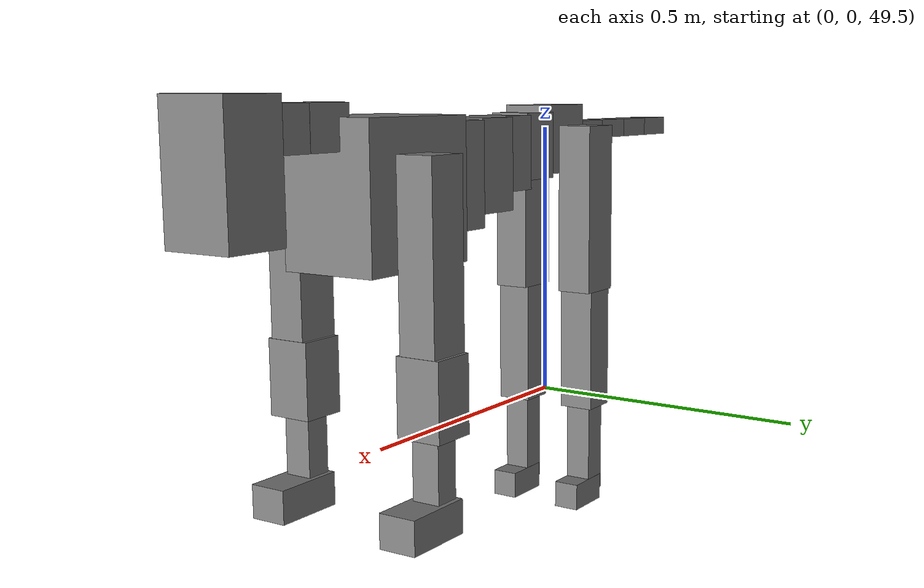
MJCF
<mujoco model="dog">

    <default>
        <joint armature="0.02" stiffness="1" damping="0.2" limited="true"/>
        <geom condim="3" friction="1 0.05 0.05" margin="0.01"/>
        <motor ctrllimited="true" ctrlrange="-1.0 1.0" forcelimited="true" gear="50"/>
    </default>

    <compiler inertiafromgeom="true" angle="radian"/>

    <option timestep="0.016" iterations="50" tolerance="1e-10" solver="Newton" jacobian="dense" cone="pyramidal"/>

    <size nconmax="20000" njmax="60000" nstack="5000000"/>
    <visual>
        <map force="0.1" zfar="30"/>
        <rgba haze="0.15 0.25 0.35 1"/>
        <quality shadowsize="2048"/>
        <global offwidth="800" offheight="800"/>
    </visual>

    <asset>
        <texture type="skybox" builtin="gradient" rgb1="0.3 0.5 0.7" rgb2="0 0 0" width="512" height="512"/>
        <texture name="texplane" type="2d" builtin="checker" rgb1=".2 .3 .4" rgb2=".1 0.15 0.2" width="512" height="512"
                 mark="cross" markrgb=".8 .8 .8"/>
        <texture name="texgeom" type="cube" builtin="flat" mark="cross" width="127" height="1278" rgb1="0.8 0.6 0.4"
                 rgb2="0.8 0.6 0.4" markrgb="1 1 1" random="0.01"/>

        <material name="matplane" reflectance="0.3" texture="texplane" texrepeat="1 1" texuniform="true"/>
        <material name="matgeom" texture="texgeom" texuniform="true" rgba="0.8 0.6 .4 1"/>
    </asset>

    <worldbody>
        <geom name="floor" pos="0 0 0" size="0 0 .25" type="plane" material="matplane" condim="3"/>

        <light directional="false" diffuse=".2 .2 .2" specular="0 0 0" pos="0 0 5" dir="0 0 -1" castshadow="false"/>
        <light mode="targetbodycom" target="torso" directional="false" diffuse=".8 .8 .8" specular="0.3 0.3 0.3"
               pos="0 0 4.0" dir="0 0 -1"/>

        <body name="root" pos="0 0 50">
            <freejoint name="root_1"/>
            <geom type="box" pos="0 0 -0.02" size="0.0774  0.0358  0.063" density="2030"/>

            <body name="spine1" pos="0.054 0 0">
                <joint name="spine1_y" axis="0 1 0" range="0 0.7" limited="true"/>
                <geom type="box" pos="0.02375 0 -0.03" size="0.04375  0.0375  0.05985" density="2030"/>

                <body name="spine2" pos="0.0612 0 0">
                    <joint name="spine2_y" axis="0 1 0" range="-0.15 0.15" limited="true"/>
                    <geom type="box" pos="0.03555  0  -0.04" size="0.04055  0.039  0.06615" density="2030"/>

                    <body name="spine3" pos="0.0730 0 0">
                        <joint name="spine3_y" axis="0 1 0" range="-0.15 0.15" limited="true"/>
                        <geom type="box" pos="0.03555  0  -0.057" size="0.04555  0.0445  0.081" density="2030"/>

                        <body name="spine4" pos="0.0780 0 0">
                            <joint name="spine4_y" axis="0 1 0" range="-0.15 0.15" limited="true"/>
                            <geom type="box" pos="0.05265  0  -0.07" size="0.05265  0.045  0.09135" density="2030"/>

                            <body name="torso" pos="0.1082 0 0">
                                <joint name="torso_y" axis="0 1 0" range="-0.15 0.15" limited="true"/>
                                <geom type="box" pos="0.11925  0  -0.085" size="0.11925  0.085  0.11745"
                                      density="2030"/>

                                <body name="neck1" pos="0.2160  0   0.0180">
                                    <joint name="neck1_y" axis="0 1 0" range="-1.2  -1" limited="true"/>
                                    <geom type="box" pos="0.0423  0  0" size="0.0423  0.03  0.036" density="2325"/>

                                    <body name="neck2" pos="0.0853  0  0">
                                        <joint name="neck2_y" axis="0 1 0" range="0.1  0" limited="true"/>
                                        <geom type="box" pos="0.0423  0  0" size="0.0423  0.03  0.036" density="2325"/>

                                        <body name="head" pos="0.0853  0  0">
                                            <joint name="head_y" axis="0 1 0" range="-0.3  -0.2" limited="true"/>
                                            <geom type="box" pos="0.0531  0  -0.055" size="0.0531  0.06  0.1044"
                                                  density="4030"/>

                                        </body>
                                    </body>
                                </body>

                                <body name="front_shoulder" pos="0.156  0   -0.0480">
                                    <joint name="front_shoulder_y" axis="0 1 0" range="-1 1.5" limited="true"/>
                                    <geom type="box" pos="0 0.13 -0.1373" size="0.0380  0.0325  0.1639" density="1158"/>
                                    <geom type="box" pos="0 -0.13 -0.1373" size="0.0380  0.0325  0.1639"
                                          density="1158"/>

                                    <body name="front_elbow" pos="0  0  -0.2746">
                                        <joint name="front_elbow_y" axis="0 1 0" range="-2 0" limited="true"/>
                                        <geom type="box" pos="0 0.13 -0.0639" size="0.0385  0.0394  0.0639"
                                              density="1081"/>
                                        <geom type="box" pos="0 -0.13 -0.0639" size="0.0385  0.0394  0.0639"
                                              density="1081"/>

                                        <body name="front_wrist" pos="0  0  -0.1277">
                                            <joint name="front_wrist_y" axis="0 1 0" range="-0.2 0" limited="true"/>
                                            <geom type="box" pos="0 0.13 -0.0578" size="0.0220  0.0244  0.0710"
                                                  density="1664"/>
                                            <geom type="box" pos="0 -0.13 -0.0578" size="0.0220  0.0244  0.0710"
                                                  density="1664"/>

                                            <body name="front_finger_end" pos="0  0  -0.1156">
                                                <joint name="front_finger_y" axis="0 1 0" range="-0.4 1"
                                                       limited="true"/>
                                                <geom type="box" pos="0.0330  0.13  -0.0132"
                                                      size="0.0605  0.0330  0.0282" density="1515"/>
                                                <geom type="box" pos="0.0330  -0.13  -0.0132"
                                                      size="0.0605  0.0330  0.0282" density="1515"/>

                                            </body>

                                        </body>
                                    </body>
                                </body>

                            </body>
                        </body>
                    </body>
                </body>
            </body>

            <body name="back_hip" pos="-0.03 0 -0.018">
                <joint name="back_hip_y" axis="0 1 0" range="-1.5 0.3" limited="true"/>
                <geom type="box" pos="0 0.07 -0.1321" size="0.0418  0.0327  0.1549" density="1154"/>
                <geom type="box" pos="0 -0.07 -0.1321" size="0.0418  0.0327  0.1549" density="1154"/>

                <body name="back_knee" pos="0  0  -0.2641">
                    <joint name="back_knee_y" axis="0 1 0" range="0 2.8" limited="true"/>
                    <geom type="box" pos="0 0.07 -0.1159" size="0.0329  0.0324  0.1314" density="1227"/>
                    <geom type="box" pos="0 -0.07 -0.1159" size="0.0329  0.0324  0.1314" density="1227"/>

                    <body name="back_ankle" pos="0  0  -0.2317">
                        <joint name="back_ankle_y" axis="0 1 0" range="-2.2 0" limited="true"/>
                        <geom type="box" pos="0 0.07 -0.0858" size="0.0236  0.0236  0.0970" density="1284"/>
                        <geom type="box" pos="0 -0.07 -0.0858" size="0.0236  0.0236  0.0970" density="1284"/>

                        <body name="back_toe_end" pos="0  0  -0.1715">
                            <joint name="back_toe_y" axis="0 1 0" range="-0.4 1" limited="true"/>
                            <geom type="box" pos="0.0239  0.07  -0.0093" size="0.0439  0.0239  0.0243" density="1515"/>
                            <geom type="box" pos="0.0239  -0.07  -0.0093" size="0.0439  0.0239  0.0243" density="1515"/>

                        </body>
                    </body>
                </body>
            </body>

            <body name="tail1" pos="-0.074 0 -0.006">
                <joint name="tail1_y" axis="0 1 0" range="-0.2 0.2" limited="true"/>
                <geom type="box" pos="-0.0536  0  0" size="0.045  0.025  0.0175" density="1587"/>

                <body name="tail2" pos="-0.09 0 0">
                    <joint name="tail2_y" axis="0 1 0" range="-0.2 0.2" limited="true"/>
                    <geom type="box" pos="-0.0536  0  0" size="0.045  0.025  0.0175" density="1587"/>

                    <body name="tail3" pos="-0.09 0 0">
                        <joint name="tail3_y" axis="0 1 0" range="-0.2 0.2" limited="true"/>
                        <geom type="box" pos="-0.0536  0  0" size="0.045  0.025  0.0175" density="1587"/>

                        <body name="tail4" pos="-0.09 0 0">
                            <joint name="tail4_y" axis="0 1 0" range="-0.2 0.2" limited="true"/>
                            <geom type="box" pos="-0.0536  0  0" size="0.045  0.025  0.0175" density="1587"/>

                        </body>
                    </body>
                </body>
            </body>
        </body>
    </worldbody>

    <actuator>
        <motor joint="spine1_y" forcerange="-150 150     "/>
        <motor joint="spine2_y" forcerange="-150 150     "/>
        <motor joint="spine3_y" forcerange="-150 150     "/>
        <motor joint="spine4_y" forcerange="-150 150     "/>
        <motor joint="torso_y" forcerange="-150 150     "/>
        <motor joint="neck1_y" forcerange="-100 100       "/>
        <motor joint="neck2_y" forcerange="-100 100       "/>
        <motor joint="head_y" forcerange="-150 150       "/>
        <motor joint="front_shoulder_y" forcerange="-168.40 148.12"/>
        <motor joint="front_elbow_y" forcerange="-199.93 186.33"/>
        <motor joint="front_wrist_y" forcerange="-141.45 54.08"/>
        <motor joint="front_finger_y" forcerange="-85.23 50.84"/>
        <motor joint="back_hip_y" forcerange="-262.09 374.54"/>
        <motor joint="back_knee_y" forcerange="-398.78 272.44"/>
        <motor joint="back_angle_y" forcerange="-168.25 109.62"/>
        <motor joint="back_toe_y" forcerange="-47.73 63.82"/>
        <motor joint="tail1_y" forcerange="-50 50     "/>
        <motor joint="tail2_y" forcerange="-50 50     "/>
        <motor joint="tail3_y" forcerange="-50 50     "/>
        <motor joint="tail4_y" forcerange="-50 50     "/>
    </actuator>
</mujoco>
